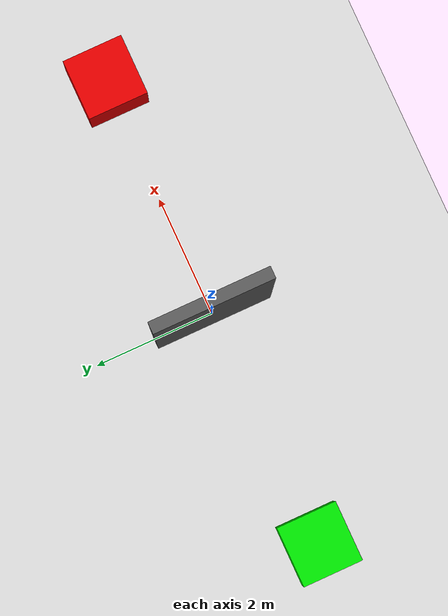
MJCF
<mujoco>
  <option gravity="0 0 -9.81"/>
  <worldbody>
    <body name="ground" pos="0 0 -10">
      <geom type="plane" size="50 50 0.1" rgba="0.95 0.95 0.95 1"/>
    </body>
    <body name="wall" pos="0 0 1.0">
      <geom type="box" size="0.1 1 2" rgba="0.4 0.4 0.4 1"/>
    </body>
    <body name="cart_elastic" pos="-4 0 0.5">
      <geom type="box" size="0.5 0.5 0.5" mass="1" rgba="0 1 0 1"/>
      <joint type="free"/>
    </body>
    <body name="cart_inelastic" pos="4 0 0.5">
      <geom type="box" size="0.5 0.5 0.5" mass="1" rgba="1 0 0 1"/>
      <joint type="free"/>
    </body>
  </worldbody>
</mujoco>
